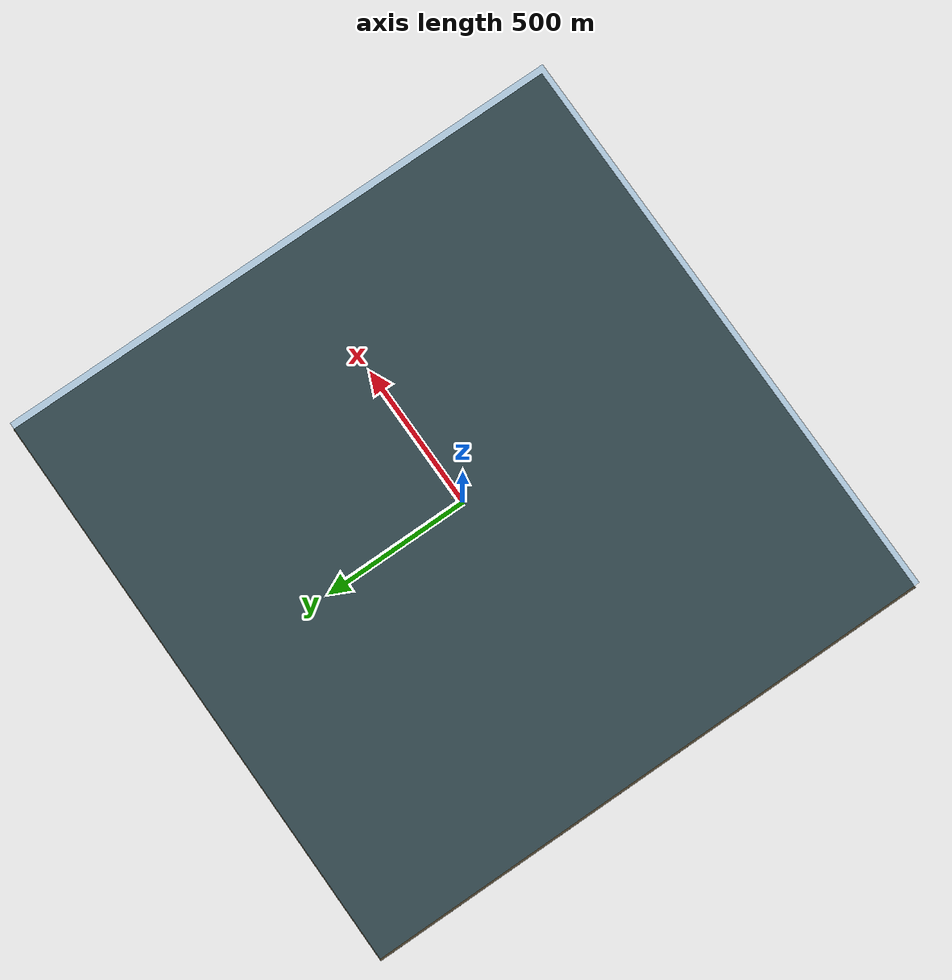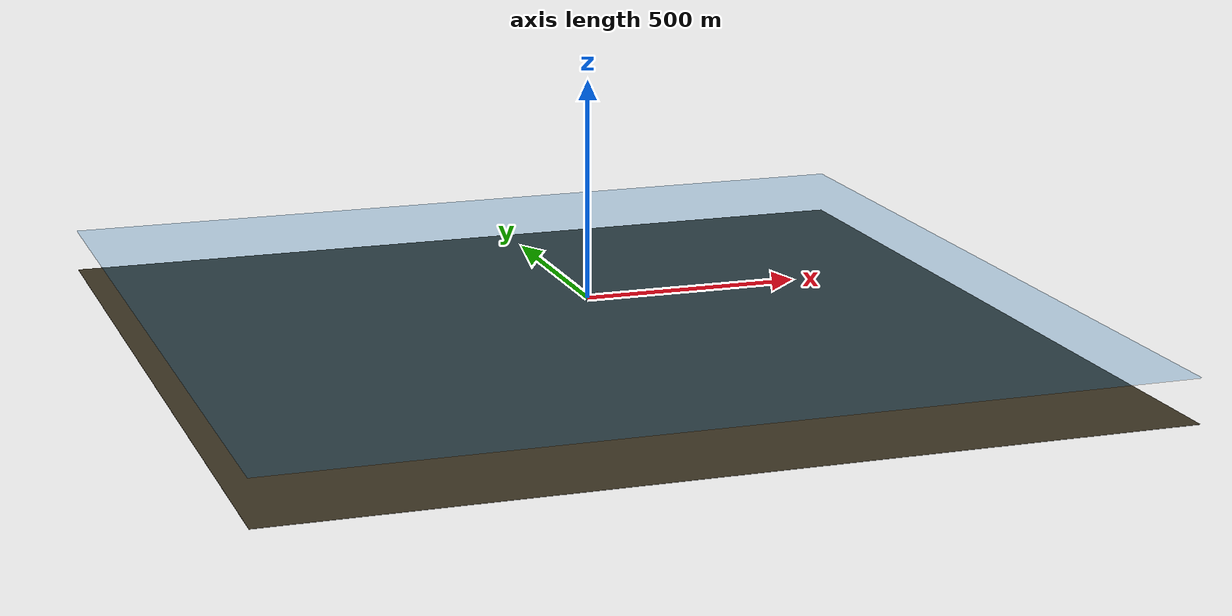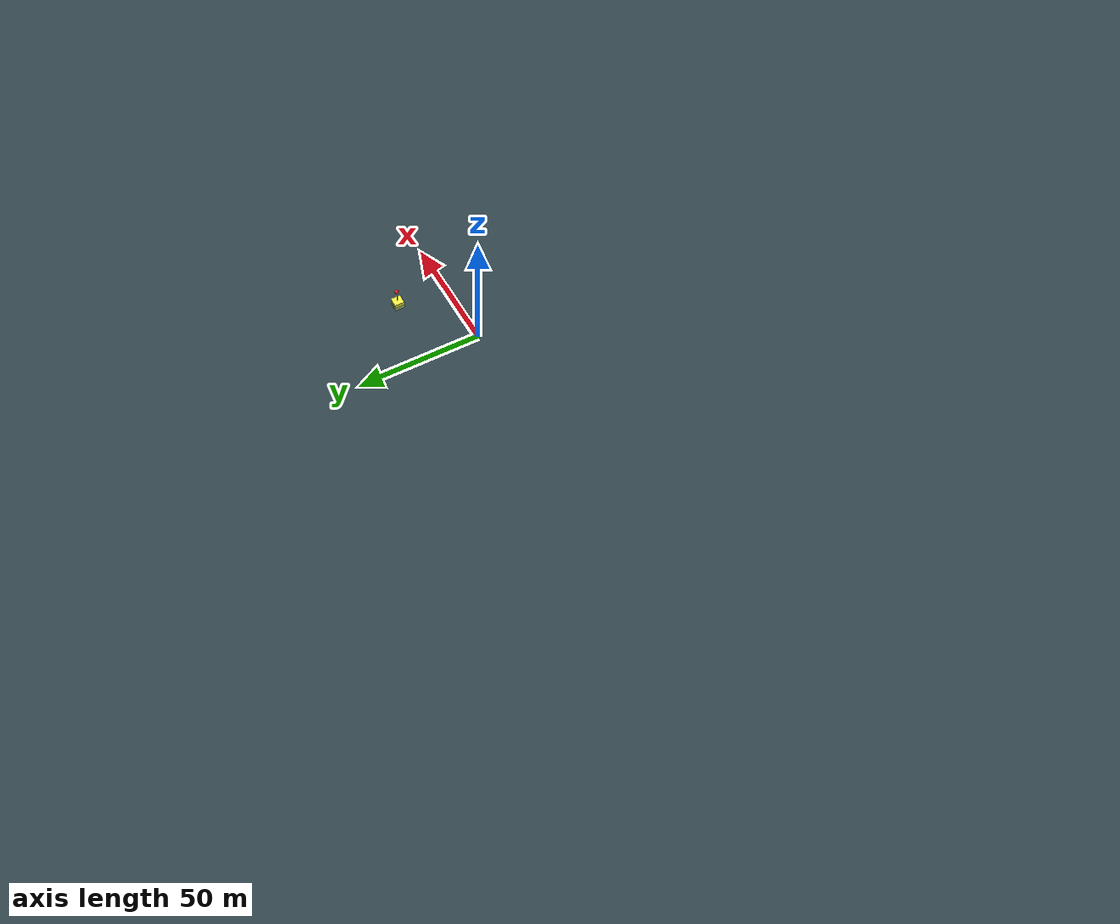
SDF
<?xml version="1.0"?>
<sdf version="1.9">
  <world name="plane_spike_harbor">

    <physics name="1ms" type="ignored">
      <max_step_size>0.004</max_step_size>
      <real_time_factor>1.0</real_time_factor>
    </physics>

    <plugin filename="gz-sim-physics-system"
            name="gz::sim::systems::Physics"/>
    <plugin filename="gz-sim-user-commands-system"
            name="gz::sim::systems::UserCommands"/>
    <plugin filename="gz-sim-scene-broadcaster-system"
            name="gz::sim::systems::SceneBroadcaster"/>
    <plugin filename="gz-sim-imu-system"
            name="gz::sim::systems::Imu"/>

    <plugin filename="gz-sim-buoyancy-system"
            name="gz::sim::systems::Buoyancy">
      <graded_buoyancy>
        <default_density>1025.0</default_density>
        <density_change>
          <above_depth>0</above_depth>
          <density>1.0</density>
        </density_change>
      </graded_buoyancy>
    </plugin>

    <gravity>0 0 -9.81</gravity>
    <magnetic_field>5.5645e-6 22.8758e-6 -42.3884e-6</magnetic_field>

    <spherical_coordinates>
      <surface_model>EARTH_WGS84</surface_model>
      <world_frame_orientation>ENU</world_frame_orientation>
      <latitude_deg>-33.724223</latitude_deg>
      <longitude_deg>150.679736</longitude_deg>
      <elevation>0</elevation>
      <heading_deg>0</heading_deg>
    </spherical_coordinates>

    <scene>
      <ambient>0.4 0.5 0.6 1.0</ambient>
      <background>0.1 0.25 0.45 1.0</background>
      <grid>false</grid>
    </scene>

    <light type="directional" name="sun">
      <cast_shadows>true</cast_shadows>
      <pose>0 0 50 0 0 0</pose>
      <diffuse>0.9 0.95 1.0 1</diffuse>
      <specular>0.2 0.2 0.2 1</specular>
      <direction>0.3 0.3 -1</direction>
    </light>

    <model name="seabed">
      <static>true</static>
      <pose>0 0 -100 0 0 0</pose>
      <link name="seabed_link">
        <collision name="seabed_collision">
          <geometry>
            <box><size>2000 2000 1.0</size></box>
          </geometry>
        </collision>
        <visual name="seabed_visual">
          <geometry>
            <box><size>2000 2000 1.0</size></box>
          </geometry>
          <material>
            <ambient>0.20 0.18 0.12 1</ambient>
            <diffuse>0.25 0.22 0.15 1</diffuse>
          </material>
        </visual>
      </link>
    </model>

    <model name="water_surface">
      <static>true</static>
      <pose>0 0 0 0 0 0</pose>
      <link name="water_surface_link">
        <visual name="water_surface_visual">
          <transparency>0.75</transparency>
          <geometry>
            <box><size>2000 2000 0.01</size></box>
          </geometry>
          <material>
            <ambient>0.0 0.3 0.5 0.5</ambient>
            <diffuse>0.0 0.4 0.7 0.5</diffuse>
          </material>
        </visual>
      </link>
    </model>

    <!-- The spike vehicle, spawned ~2 m below the surface. -->
    <include>
      <uri>model://plane_spike</uri>
      <pose>0 0 -2 0 0 0</pose>
    </include>

    <!-- ground control station (the operator/GCS landmark) -->
    <include>
      <uri>model://ground_station</uri>
      <pose>30 20 0 0 0 0</pose>
    </include>
  </world>
</sdf>

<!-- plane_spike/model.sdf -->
<sdf version="1.9">
  <model name="plane_spike">
    <link name="base_link">
      <inertial>
        <pose>0 0 -0.03 0 0 0</pose>
        <mass>46.0</mass>
        <inertia>
          <ixx>0.24</ixx>
          <ixy>0</ixy>
          <ixz>0</ixz>
          <iyy>9.12</iyy>
          <iyz>0</iyz>
          <izz>9.12</izz>
        </inertia>
      </inertial>

      <collision name="hull_collision">
        <geometry>
          <cylinder><radius>0.1</radius><length>1.5</length></cylinder>
        </geometry>
      </collision>

      <visual name="hull_visual">
        <geometry>
          <cylinder><radius>0.1</radius><length>1.5</length></cylinder>
        </geometry>
        <material>
          <diffuse>0.8 0.5 0.1 1</diffuse>
          <ambient>0.6 0.4 0.1 1</ambient>
        </material>
      </visual>
    </link>

    <link name="prop_link">
      <pose>-0.75 0 0 0 0 0</pose>
      <inertial>
        <mass>0.2</mass>
        <inertia>
          <ixx>0.01</ixx>
          <ixy>0</ixy>
          <ixz>0</ixz>
          <iyy>0.01</iyy>
          <iyz>0</iyz>
          <izz>0.01</izz>
        </inertia>
      </inertial>
      <visual name="prop_visual">
        <geometry>
          <cylinder><radius>0.08</radius><length>0.02</length></cylinder>
        </geometry>
        <material>
          <diffuse>0.1 0.1 0.1 1</diffuse>
          <ambient>0.1 0.1 0.1 1</ambient>
        </material>
      </visual>
    </link>
    <joint name="prop_joint" type="revolute">
      <parent>base_link</parent>
      <child>prop_link</child>
      <axis>
        <xyz>1 0 0</xyz>
        <limit>
          <lower>-1e16</lower>
          <upper>1e16</upper>
        </limit>
        <dynamics>
          <damping>0.02</damping>
        </dynamics>
      </axis>
    </joint>

    <!-- sensors -->
    <link name="imu_link">
      <inertial>
        <pose>0 0 0 0 0 0</pose>
        <mass>0.1</mass>
        <inertia>
          <ixx>0.0001</ixx>
          <ixy>0</ixy>
          <ixz>0</ixz>
          <iyy>0.0001</iyy>
          <iyz>0</iyz>
          <izz>0.0001</izz>
        </inertia>
      </inertial>
      <sensor name="imu_sensor" type="imu">
        <pose degrees="true">0 0 0 180 0 0</pose>
        <always_on>1</always_on>
        <update_rate>1000.0</update_rate>
      </sensor>
    </link>
    <joint name="imu_joint" type="revolute">
      <child>imu_link</child>
      <parent>base_link</parent>
      <axis>
        <xyz>0 0 1</xyz>
        <limit>
          <lower>0</lower>
          <upper>0</upper>
        </limit>
        <dynamics>
          <damping>1.0</damping>
        </dynamics>
      </axis>
    </joint>

    <!-- plugins -->
    <plugin name="gz::sim::systems::JointStatePublisher"
      filename="gz-sim-joint-state-publisher-system">
    </plugin>
    <plugin name="gz::sim::systems::OdometryPublisher"
      filename="gz-sim-odometry-publisher-system">
      <odom_frame>odom</odom_frame>
      <robot_base_frame>base_link</robot_base_frame>
      <dimensions>3</dimensions>
    </plugin>

    <plugin name="gz::sim::systems::Thruster"
      filename="gz-sim-thruster-system">
      <namespace>plane_spike</namespace>
      <joint_name>prop_joint</joint_name>
      <thrust_coefficient>0.02</thrust_coefficient>
      <fluid_density>1025</fluid_density>
      <propeller_diameter>0.14</propeller_diameter>
      <velocity_control>0</velocity_control>
      <use_angvel_cmd>0</use_angvel_cmd>
    </plugin>

    <!-- light drag, crude/placeholder like the mass — not tuned, just
         enough to keep the vehicle from accelerating forever. -->
    <plugin filename="gz-sim-hydrodynamics-system"
            name="gz::sim::systems::Hydrodynamics">
      <link_name>base_link</link_name>
      <water_density>1025.0</water_density>
      <xDotU>0</xDotU>
      <yDotV>0</yDotV>
      <zDotW>0</zDotW>
      <kDotP>0</kDotP>
      <mDotQ>0</mDotQ>
      <nDotR>0</nDotR>
      <xU>-5</xU>
      <yV>-15</yV>
      <zW>-15</zW>
      <kP>-2</kP>
      <mQ>-2</mQ>
      <nR>-2</nR>
      <xUabsU>-8</xUabsU>
      <yVabsV>-25</yVabsV>
      <zWabsW>-25</zWabsW>
      <kPabsP>-3</kPabsP>
      <mQabsQ>-3</mQabsQ>
      <nRabsR>-3</nRabsR>
    </plugin>

    <plugin name="ArduPilotPlugin"
      filename="ArduPilotPlugin">
      <fdm_addr>127.0.0.1</fdm_addr>
      <fdm_port_in>9100</fdm_port_in>
      <connectionTimeoutMaxCount>5</connectionTimeoutMaxCount>
      <lock_step>1</lock_step>
      <gazeboXYZToNED degrees="true">0 0 0 180 0 90</gazeboXYZToNED>
      <modelXYZToAirplaneXForwardZDown degrees="true">0 0 0 180 0 0</modelXYZToAirplaneXForwardZDown>
      <imuName>imu_link::imu_sensor</imuName>

      <control channel="2">
        <jointName>prop_joint</jointName>
        <multiplier>50</multiplier>
        <offset>-0.5</offset>
        <servo_min>1000</servo_min>
        <servo_max>2000</servo_max>
        <type>COMMAND</type>
        <cmd_topic>/model/plane_spike/joint/prop_joint/cmd_thrust</cmd_topic>
      </control>
    </plugin>

  </model>
</sdf>

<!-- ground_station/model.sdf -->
<sdf version="1.9">
  <model name="ground_station">
    <static>true</static>
    <link name="base">
      <visual name="hut">
        <geometry><box><size>4 4 3</size></box></geometry>
        <material><ambient>0.85 0.85 0.2 1</ambient><diffuse>0.9 0.9 0.25 1</diffuse></material>
      </visual>
      <visual name="mast">
        <pose>0 0 4.0 0 0 0</pose>
        <geometry><cylinder><radius>0.12</radius><length>5</length></cylinder></geometry>
        <material><ambient>0.2 0.2 0.2 1</ambient><diffuse>0.3 0.3 0.3 1</diffuse></material>
      </visual>
      <visual name="dish">
        <pose>0 0 6.6 0 0 0</pose>
        <geometry><sphere><radius>0.8</radius></sphere></geometry>
        <material><ambient>0.9 0.1 0.1 1</ambient><diffuse>1 0.15 0.15 1</diffuse></material>
      </visual>
      <collision name="c"><geometry><box><size>4 4 3</size></box></geometry></collision>
    </link>
  </model>
</sdf>
